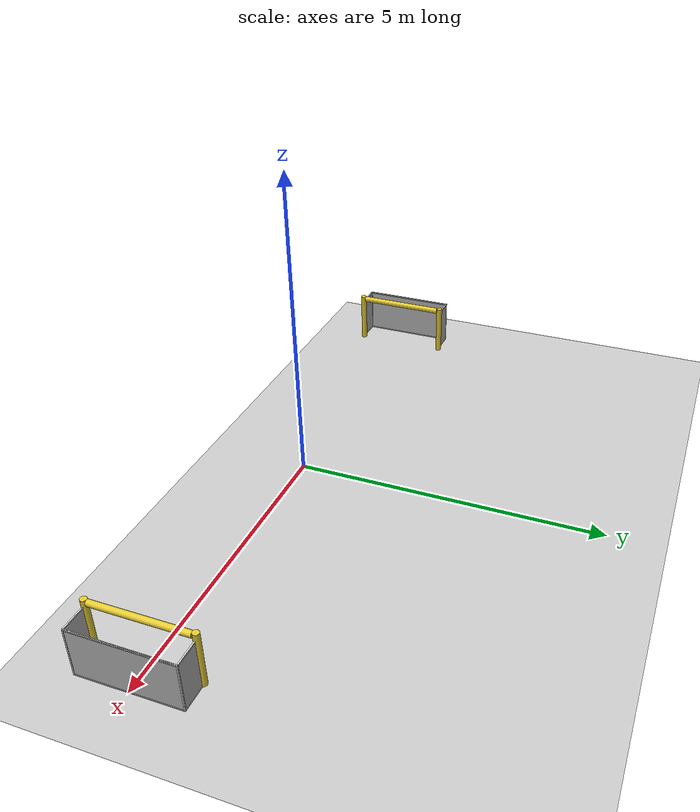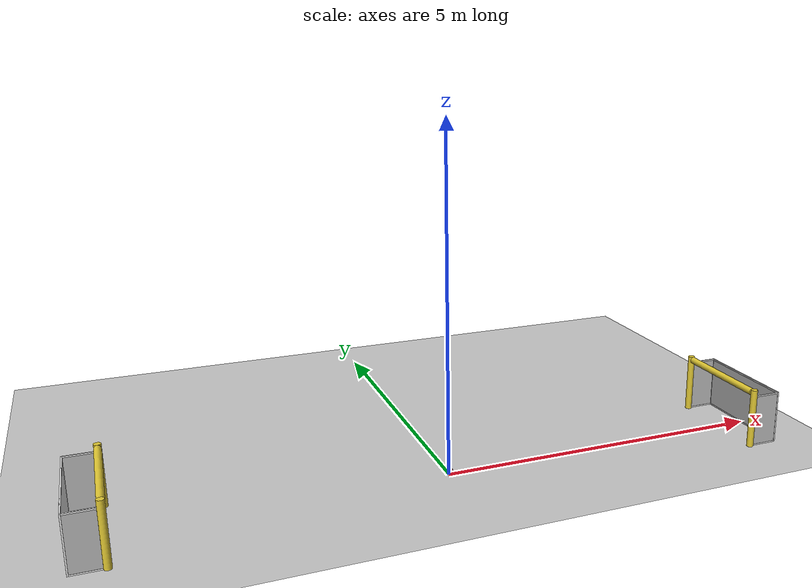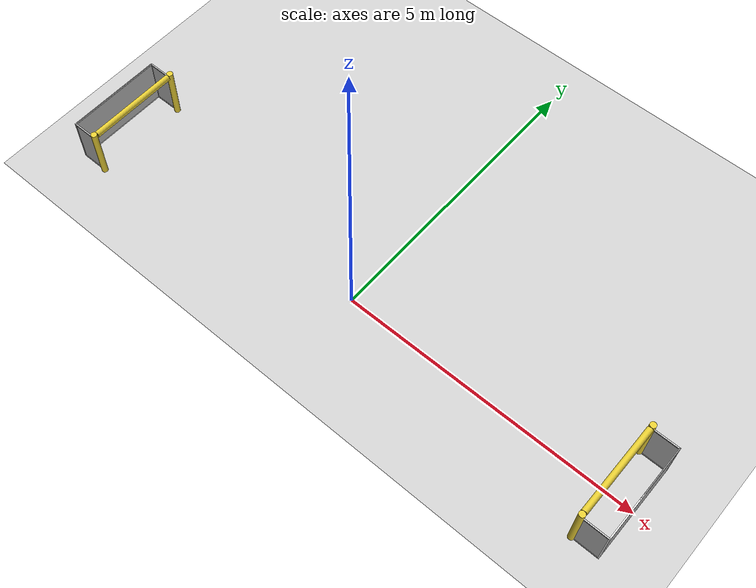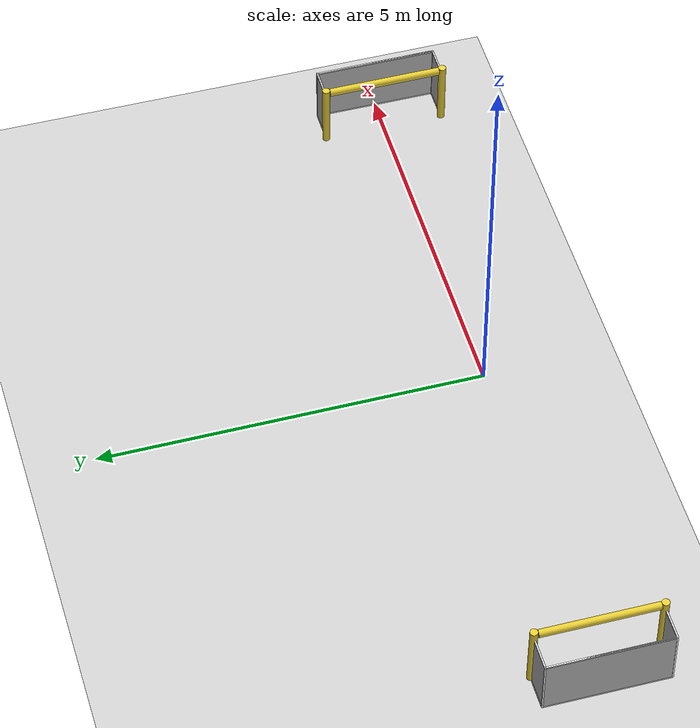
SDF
<sdf version="1.7">
 <world name="default">
  <light name="sun" type="directional">
   <pose>0 0 10 0 -0 0</pose>
   <diffuse>0.8 0.8 0.8 1</diffuse>
   <specular>0.2 0.2 0.2 1</specular>
   <attenuation>
    <range>1000</range>
    <constant>0.9</constant>
    <linear>0.01</linear>
    <quadratic>0.001</quadratic>
   </attenuation>
   <direction>-0.5 0.1 -0.9</direction>
   <spot><inner_angle>0</inner_angle><outer_angle>0</outer_angle><falloff>0</falloff></spot>
  </light>
  <model name="ground_plane">
   <static>1</static>
   <link name="link">
    <collision name="collision">
     <geometry><plane><normal>0 0 1</normal><size>100 100</size></plane></geometry>
     <surface>
      <contact><collide_bitmask>65535</collide_bitmask></contact>
      <friction><ode><mu>100</mu><mu2>50</mu2></ode></friction>
     </surface>
    </collision>
    <visual name="visual">
     <cast_shadows>0</cast_shadows>
     <geometry><plane><normal>0 0 1</normal><size>100 100</size></plane></geometry>
     <material>
      <script><uri>file://media/materials/scripts/gazebo.material</uri><name>Gazebo/Grey</name></script>
     </material>
    </visual>
    <enable_wind>1</enable_wind>
   </link>
  </model>
  <gravity>0 0 -9.8</gravity>
  <magnetic_field>6e-06 2.3e-05 -4.2e-05</magnetic_field>
  <atmosphere type="adiabatic"/>
  <physics type="ode">
   <max_step_size>0.001</max_step_size>
   <real_time_factor>1</real_time_factor>
   <real_time_update_rate>1000</real_time_update_rate>
  </physics>
  <scene><ambient>0.4 0.4 0.4 1</ambient><background>0.7 0.7 0.7 1</background><shadows>1</shadows></scene>
  <spherical_coordinates>
   <surface_model>EARTH_WGS84</surface_model>
   <latitude_deg>0</latitude_deg>
   <longitude_deg>0</longitude_deg>
   <elevation>0</elevation>
   <heading_deg>0</heading_deg>
  </spherical_coordinates>
  <model name="RoboCup 2014 SPL Goal_0">
   <static>1</static>
   <link name="left_post">
    <pose>0 0.8 0.45 0 -0 0</pose>
    <collision name="collision">
     <geometry><cylinder><radius>0.05</radius><length>0.9</length></cylinder></geometry>
    </collision>
    <visual name="visual">
     <geometry><cylinder><radius>0.05</radius><length>0.9</length></cylinder></geometry>
     <material>
      <script><uri>file://media/materials/scripts/gazebo.material</uri><name>Gazebo/ZincYellow</name></script>
     </material>
    </visual>
   </link>
   <link name="left_support_horiz_lower">
    <pose>0.24 0.8 0.01 0 -0 0</pose>
    <collision name="collision"><geometry><box><size>0.38 0.02 0.02</size></box></geometry></collision>
    <visual name="visual">
     <geometry><box><size>0.38 0.02 0.02</size></box></geometry>
     <material>
      <script><uri>file://media/materials/scripts/gazebo.material</uri><name>Gazebo/White</name></script>
     </material>
    </visual>
   </link>
   <link name="left_support_horiz_upper">
    <pose>0.24 0.8 0.79 0 -0 0</pose>
    <collision name="collision"><geometry><box><size>0.38 0.02 0.02</size></box></geometry></collision>
    <visual name="visual">
     <geometry><box><size>0.38 0.02 0.02</size></box></geometry>
     <material>
      <script><uri>file://media/materials/scripts/gazebo.material</uri><name>Gazebo/White</name></script>
     </material>
    </visual>
   </link>
   <link name="left_support_vertical">
    <pose>0.44 0.8 0.4 3.14159 1.57079 3.14159</pose>
    <collision name="collision"><geometry><box><size>0.8 0.02 0.02</size></box></geometry></collision>
    <visual name="visual">
     <geometry><box><size>0.8 0.02 0.02</size></box></geometry>
     <material>
      <script><uri>file://media/materials/scripts/gazebo.material</uri><name>Gazebo/White</name></script>
     </material>
    </visual>
   </link>
   <link name="right_support_horiz_lower">
    <pose>0.24 -0.8 0.01 0 -0 0</pose>
    <collision name="collision"><geometry><box><size>0.38 0.02 0.02</size></box></geometry></collision>
    <visual name="visual">
     <geometry><box><size>0.38 0.02 0.02</size></box></geometry>
     <material>
      <script><uri>file://media/materials/scripts/gazebo.material</uri><name>Gazebo/White</name></script>
     </material>
    </visual>
   </link>
   <link name="right_support_horiz_upper">
    <pose>0.24 -0.8 0.79 0 -0 0</pose>
    <collision name="collision"><geometry><box><size>0.38 0.02 0.02</size></box></geometry></collision>
    <visual name="visual">
     <geometry><box><size>0.38 0.02 0.02</size></box></geometry>
     <material>
      <script><uri>file://media/materials/scripts/gazebo.material</uri><name>Gazebo/White</name></script>
     </material>
    </visual>
   </link>
   <link name="right_support_vertical">
    <pose>0.44 -0.8 0.4 3.14159 1.57079 3.14159</pose>
    <collision name="collision"><geometry><box><size>0.8 0.02 0.02</size></box></geometry></collision>
    <visual name="visual">
     <geometry><box><size>0.8 0.02 0.02</size></box></geometry>
     <material>
      <script><uri>file://media/materials/scripts/gazebo.material</uri><name>Gazebo/White</name></script>
     </material>
    </visual>
   </link>
   <link name="center_support_horiz_lower">
    <pose>0.44 0 0.01 3.14159 1.57079 3.14159</pose>
    <collision name="collision"><geometry><box><size>0.02 1.58 0.02</size></box></geometry></collision>
    <visual name="visual">
     <geometry><box><size>0.02 1.58 0.02</size></box></geometry>
     <material>
      <script><uri>file://media/materials/scripts/gazebo.material</uri><name>Gazebo/White</name></script>
     </material>
    </visual>
   </link>
   <link name="center_support_horiz_upper">
    <pose>0.44 0 0.79 3.14159 1.57079 3.14159</pose>
    <collision name="collision"><geometry><box><size>0.02 1.58 0.02</size></box></geometry></collision>
    <visual name="visual">
     <geometry><box><size>0.02 1.58 0.02</size></box></geometry>
     <material>
      <script><uri>file://media/materials/scripts/gazebo.material</uri><name>Gazebo/White</name></script>
     </material>
    </visual>
   </link>
   <link name="right_post">
    <pose>0 -0.8 0.45 0 -0 0</pose>
    <collision name="collision">
     <geometry><cylinder><radius>0.05</radius><length>0.9</length></cylinder></geometry>
    </collision>
    <visual name="visual">
     <geometry><cylinder><radius>0.05</radius><length>0.9</length></cylinder></geometry>
     <material>
      <script><uri>file://media/materials/scripts/gazebo.material</uri><name>Gazebo/ZincYellow</name></script>
     </material>
    </visual>
   </link>
   <link name="crossbar">
    <pose>0 0 0.85 1.57 1.57 0</pose>
    <collision name="collision">
     <geometry><cylinder><radius>0.05</radius><length>1.5</length></cylinder></geometry>
    </collision>
    <visual name="visual">
     <geometry><cylinder><radius>0.05</radius><length>1.5</length></cylinder></geometry>
     <material>
      <script><uri>file://media/materials/scripts/gazebo.material</uri><name>Gazebo/ZincYellow</name></script>
     </material>
    </visual>
   </link>
   <link name="center_net">
    <pose>0.44 0 0.4 0 -0 0</pose>
    <collision name="collision"><geometry><box><size>0.01 1.6 0.8</size></box></geometry></collision>
    <visual name="visual">
     <geometry><box><size>0.01 1.6 0.8</size></box></geometry>
     <material>
      <script>
       <uri>model://robocup09_spl_field/materials/scripts/</uri>
       <uri>model://robocup09_spl_field/materials/textures/</uri>
       <name>RoboCup/Net</name>
      </script>
     </material>
    </visual>
   </link>
   <link name="left_net">
    <pose>0.24 0.8 0.4 0 -0 0</pose>
    <collision name="collision"><geometry><box><size>0.38 0.01 0.76</size></box></geometry></collision>
    <visual name="visual">
     <geometry><box><size>0.38 0.01 0.76</size></box></geometry>
     <material>
      <script>
       <uri>model://robocup09_spl_field/materials/scripts/</uri>
       <uri>model://robocup09_spl_field/materials/textures/</uri>
       <name>RoboCup/Net</name>
      </script>
     </material>
    </visual>
   </link>
   <link name="right_net">
    <pose>0.24 -0.8 0.4 0 -0 0</pose>
    <collision name="collision"><geometry><box><size>0.38 0.01 0.76</size></box></geometry></collision>
    <visual name="visual">
     <geometry><box><size>0.38 0.01 0.76</size></box></geometry>
     <material>
      <script>
       <uri>model://robocup09_spl_field/materials/scripts/</uri>
       <uri>model://robocup09_spl_field/materials/textures/</uri>
       <name>RoboCup/Net</name>
      </script>
     </material>
    </visual>
   </link>
   <pose>4.54565 -0.002363 0 0 -0 0</pose>
  </model>
  <model name="RoboCup 2014 SPL Goal">
   <static>1</static>
   <link name="left_post">
    <pose>0 0.8 0.45 0 -0 0</pose>
    <collision name="collision">
     <geometry><cylinder><radius>0.05</radius><length>0.9</length></cylinder></geometry>
    </collision>
    <visual name="visual">
     <geometry><cylinder><radius>0.05</radius><length>0.9</length></cylinder></geometry>
     <material>
      <script><uri>file://media/materials/scripts/gazebo.material</uri><name>Gazebo/ZincYellow</name></script>
     </material>
    </visual>
   </link>
   <link name="left_support_horiz_lower">
    <pose>0.24 0.8 0.01 0 -0 0</pose>
    <collision name="collision"><geometry><box><size>0.38 0.02 0.02</size></box></geometry></collision>
    <visual name="visual">
     <geometry><box><size>0.38 0.02 0.02</size></box></geometry>
     <material>
      <script><uri>file://media/materials/scripts/gazebo.material</uri><name>Gazebo/White</name></script>
     </material>
    </visual>
   </link>
   <link name="left_support_horiz_upper">
    <pose>0.24 0.8 0.79 0 -0 0</pose>
    <collision name="collision"><geometry><box><size>0.38 0.02 0.02</size></box></geometry></collision>
    <visual name="visual">
     <geometry><box><size>0.38 0.02 0.02</size></box></geometry>
     <material>
      <script><uri>file://media/materials/scripts/gazebo.material</uri><name>Gazebo/White</name></script>
     </material>
    </visual>
   </link>
   <link name="left_support_vertical">
    <pose>0.44 0.8 0.4 3.14159 1.57079 3.14159</pose>
    <collision name="collision"><geometry><box><size>0.8 0.02 0.02</size></box></geometry></collision>
    <visual name="visual">
     <geometry><box><size>0.8 0.02 0.02</size></box></geometry>
     <material>
      <script><uri>file://media/materials/scripts/gazebo.material</uri><name>Gazebo/White</name></script>
     </material>
    </visual>
   </link>
   <link name="right_support_horiz_lower">
    <pose>0.24 -0.8 0.01 0 -0 0</pose>
    <collision name="collision"><geometry><box><size>0.38 0.02 0.02</size></box></geometry></collision>
    <visual name="visual">
     <geometry><box><size>0.38 0.02 0.02</size></box></geometry>
     <material>
      <script><uri>file://media/materials/scripts/gazebo.material</uri><name>Gazebo/White</name></script>
     </material>
    </visual>
   </link>
   <link name="right_support_horiz_upper">
    <pose>0.24 -0.8 0.79 0 -0 0</pose>
    <collision name="collision"><geometry><box><size>0.38 0.02 0.02</size></box></geometry></collision>
    <visual name="visual">
     <geometry><box><size>0.38 0.02 0.02</size></box></geometry>
     <material>
      <script><uri>file://media/materials/scripts/gazebo.material</uri><name>Gazebo/White</name></script>
     </material>
    </visual>
   </link>
   <link name="right_support_vertical">
    <pose>0.44 -0.8 0.4 3.14159 1.57079 3.14159</pose>
    <collision name="collision"><geometry><box><size>0.8 0.02 0.02</size></box></geometry></collision>
    <visual name="visual">
     <geometry><box><size>0.8 0.02 0.02</size></box></geometry>
     <material>
      <script><uri>file://media/materials/scripts/gazebo.material</uri><name>Gazebo/White</name></script>
     </material>
    </visual>
   </link>
   <link name="center_support_horiz_lower">
    <pose>0.44 0 0.01 3.14159 1.57079 3.14159</pose>
    <collision name="collision"><geometry><box><size>0.02 1.58 0.02</size></box></geometry></collision>
    <visual name="visual">
     <geometry><box><size>0.02 1.58 0.02</size></box></geometry>
     <material>
      <script><uri>file://media/materials/scripts/gazebo.material</uri><name>Gazebo/White</name></script>
     </material>
    </visual>
   </link>
   <link name="center_support_horiz_upper">
    <pose>0.44 0 0.79 3.14159 1.57079 3.14159</pose>
    <collision name="collision"><geometry><box><size>0.02 1.58 0.02</size></box></geometry></collision>
    <visual name="visual">
     <geometry><box><size>0.02 1.58 0.02</size></box></geometry>
     <material>
      <script><uri>file://media/materials/scripts/gazebo.material</uri><name>Gazebo/White</name></script>
     </material>
    </visual>
   </link>
   <link name="right_post">
    <pose>0 -0.8 0.45 0 -0 0</pose>
    <collision name="collision">
     <geometry><cylinder><radius>0.05</radius><length>0.9</length></cylinder></geometry>
    </collision>
    <visual name="visual">
     <geometry><cylinder><radius>0.05</radius><length>0.9</length></cylinder></geometry>
     <material>
      <script><uri>file://media/materials/scripts/gazebo.material</uri><name>Gazebo/ZincYellow</name></script>
     </material>
    </visual>
   </link>
   <link name="crossbar">
    <pose>0 0 0.85 1.57 1.57 0</pose>
    <collision name="collision">
     <geometry><cylinder><radius>0.05</radius><length>1.5</length></cylinder></geometry>
    </collision>
    <visual name="visual">
     <geometry><cylinder><radius>0.05</radius><length>1.5</length></cylinder></geometry>
     <material>
      <script><uri>file://media/materials/scripts/gazebo.material</uri><name>Gazebo/ZincYellow</name></script>
     </material>
    </visual>
   </link>
   <link name="center_net">
    <pose>0.44 0 0.4 0 -0 0</pose>
    <collision name="collision"><geometry><box><size>0.01 1.6 0.8</size></box></geometry></collision>
    <visual name="visual">
     <geometry><box><size>0.01 1.6 0.8</size></box></geometry>
     <material>
      <script>
       <uri>model://robocup09_spl_field/materials/scripts/</uri>
       <uri>model://robocup09_spl_field/materials/textures/</uri>
       <name>RoboCup/Net</name>
      </script>
     </material>
    </visual>
   </link>
   <link name="left_net">
    <pose>0.24 0.8 0.4 0 -0 0</pose>
    <collision name="collision"><geometry><box><size>0.38 0.01 0.76</size></box></geometry></collision>
    <visual name="visual">
     <geometry><box><size>0.38 0.01 0.76</size></box></geometry>
     <material>
      <script>
       <uri>model://robocup09_spl_field/materials/scripts/</uri>
       <uri>model://robocup09_spl_field/materials/textures/</uri>
       <name>RoboCup/Net</name>
      </script>
     </material>
    </visual>
   </link>
   <link name="right_net">
    <pose>0.24 -0.8 0.4 0 -0 0</pose>
    <collision name="collision"><geometry><box><size>0.38 0.01 0.76</size></box></geometry></collision>
    <visual name="visual">
     <geometry><box><size>0.38 0.01 0.76</size></box></geometry>
     <material>
      <script>
       <uri>model://robocup09_spl_field/materials/scripts/</uri>
       <uri>model://robocup09_spl_field/materials/textures/</uri>
       <name>RoboCup/Net</name>
      </script>
     </material>
    </visual>
   </link>
   <pose>-4.53493 0.031701 0 0 -0 3.14</pose>
  </model>
  <model name="RoboCup SPL Ball">
   <static>0</static>
   <link name="ball">
    <inertial>
     <mass>0.0056</mass>
     <inertia>
      <ixx>2.37e-06</ixx>
      <iyy>2.37e-06</iyy>
      <izz>2.37e-06</izz>
      <ixy>0</ixy>
      <ixz>0</ixz>
      <iyz>0</iyz>
     </inertia>
    </inertial>
    <collision name="collision"><geometry><sphere><radius>0.0325</radius></sphere></geometry></collision>
    <visual name="visual">
     <geometry><sphere><radius>0.0325</radius></sphere></geometry>
     <material>
      <script><uri>file://media/materials/scripts/gazebo.material</uri><name>Gazebo/RedBright</name></script>
     </material>
    </visual>
    <enable_wind>1</enable_wind>
   </link>
   <pose>0.024229 0.001952 0.066743 0 -0 0</pose>
  </model>
 </world>
</sdf>
